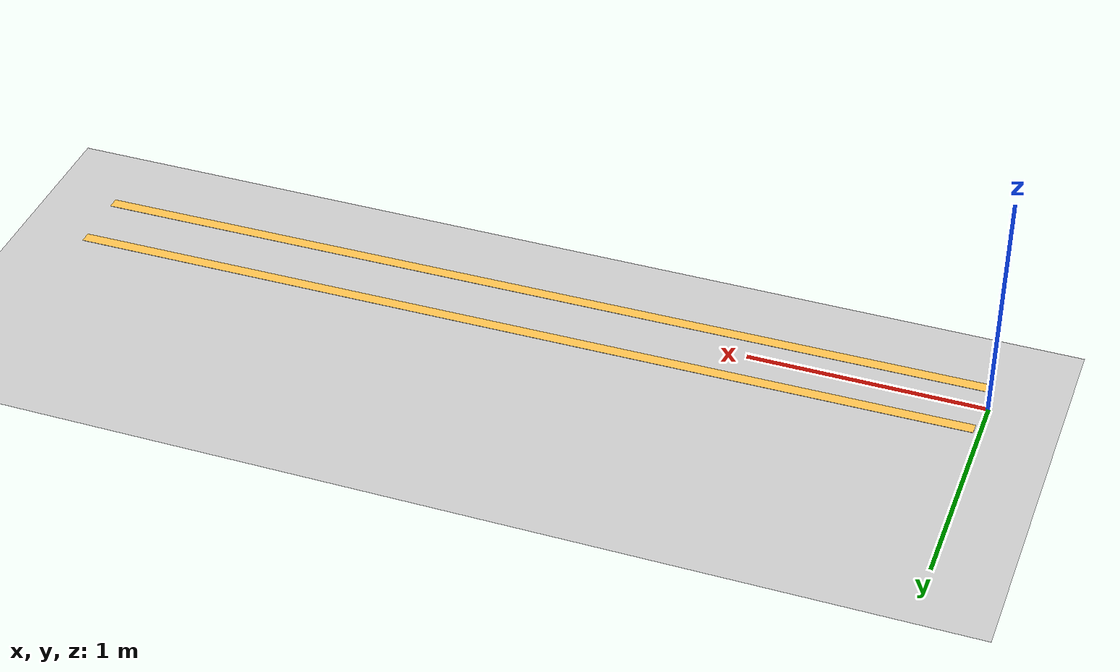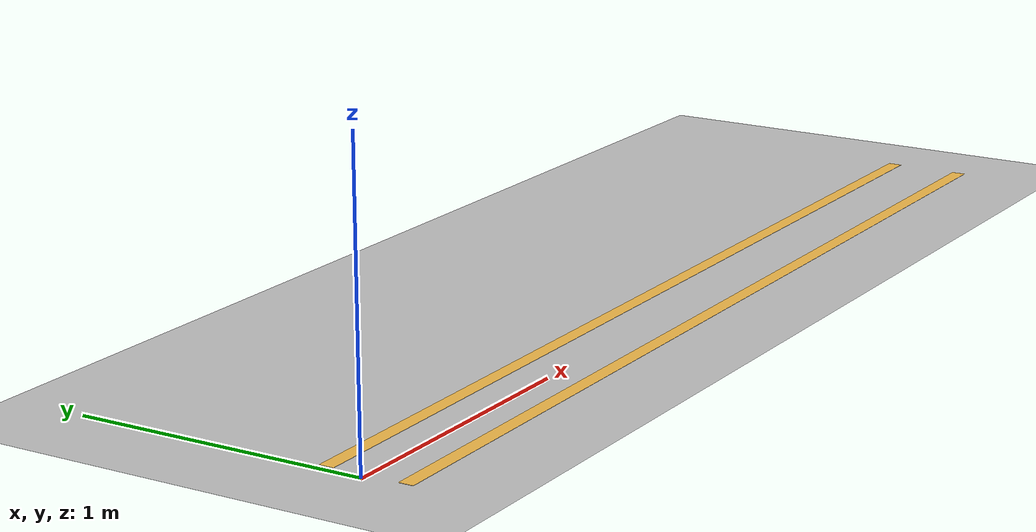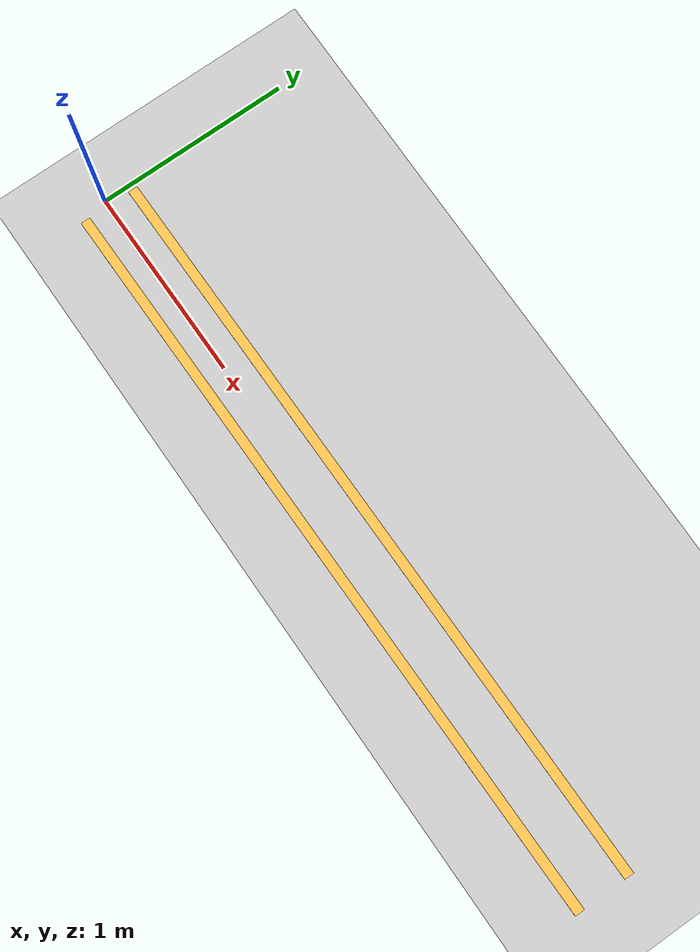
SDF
<sdf version="1.7">
 <world name="default">
  <light name="sun" type="directional">
   <pose>0 0 10 0 -0 0</pose>
   <diffuse>0.8 0.8 0.8 1</diffuse>
   <specular>0.2 0.2 0.2 1</specular>
   <attenuation>
    <range>1000</range>
    <constant>0.9</constant>
    <linear>0.01</linear>
    <quadratic>0.001</quadratic>
   </attenuation>
   <direction>-0.5 0.1 -0.9</direction>
   <spot><inner_angle>0</inner_angle><outer_angle>0</outer_angle><falloff>0</falloff></spot>
  </light>
  <model name="ground_plane">
   <static>1</static>
   <link name="link">
    <collision name="collision">
     <geometry><plane><normal>0 0 1</normal><size>100 100</size></plane></geometry>
     <surface>
      <contact><collide_bitmask>65535</collide_bitmask></contact>
      <friction><ode><mu>100</mu><mu2>50</mu2></ode></friction>
     </surface>
    </collision>
    <visual name="visual">
     <cast_shadows>0</cast_shadows>
     <geometry><plane><normal>0 0 1</normal><size>100 100</size></plane></geometry>
     <material>
      <script><uri>file://media/materials/scripts/gazebo.material</uri><name>Gazebo/Grey</name></script>
     </material>
    </visual>
   </link>
  </model>
  <gravity>0 0 -9.8</gravity>
  <magnetic_field>6e-06 2.3e-05 -4.2e-05</magnetic_field>
  <atmosphere type="adiabatic"/>
  <physics type="ode">
   <max_step_size>0.001</max_step_size>
   <real_time_factor>1</real_time_factor>
   <real_time_update_rate>1000</real_time_update_rate>
  </physics>
  <scene><ambient>0.4 0.4 0.4 1</ambient><background>0.7 0.7 0.7 1</background><shadows>1</shadows></scene>
  <spherical_coordinates>
   <surface_model>EARTH_WGS84</surface_model>
   <latitude_deg>0</latitude_deg>
   <longitude_deg>0</longitude_deg>
   <elevation>0</elevation>
   <heading_deg>0</heading_deg>
  </spherical_coordinates>
  <model name="yellow_lane">
   <pose>1.46325 -1.43984 0 0 -0 1.57825</pose>
   <link name="Wall_0">
    <collision name="Wall_0_Collision">
     <geometry><box><size>3.9 0.05 0.001</size></box></geometry>
     <pose>0 0 0.0005 0 -0 0</pose>
    </collision>
    <visual name="Wall_0_Visual">
     <pose>0 0 0.0005 0 -0 0</pose>
     <geometry><box><size>3.9 0.05 0.001</size></box></geometry>
     <material>
      <script><uri>file://media/materials/scripts/gazebo.material</uri><name>Gazebo/Grey</name></script>
      <ambient>1 0.764706 0.305882 1</ambient>
     </material>
     <meta><layer>0</layer></meta>
    </visual>
    <pose>1.3175 -0.5225 0 0 -0 1.5708</pose>
   </link>
   <static>1</static>
  </model>
  <model name="yellow_lane_clone">
   <pose>1.46283 -1.16946 0 0 -0 1.57825</pose>
   <link name="Wall_0">
    <collision name="Wall_0_Collision">
     <geometry><box><size>3.9 0.05 0.001</size></box></geometry>
     <pose>0 0 0.0005 0 -0 0</pose>
    </collision>
    <visual name="Wall_0_Visual">
     <pose>0 0 0.0005 0 -0 0</pose>
     <geometry><box><size>3.9 0.05 0.001</size></box></geometry>
     <material>
      <script><uri>file://media/materials/scripts/gazebo.material</uri><name>Gazebo/Grey</name></script>
      <ambient>1 0.764706 0.305882 1</ambient>
     </material>
     <meta><layer>0</layer></meta>
    </visual>
    <pose>1.3175 -0.5225 0 0 -0 1.5708</pose>
   </link>
   <static>1</static>
  </model>
 </world>
</sdf>
